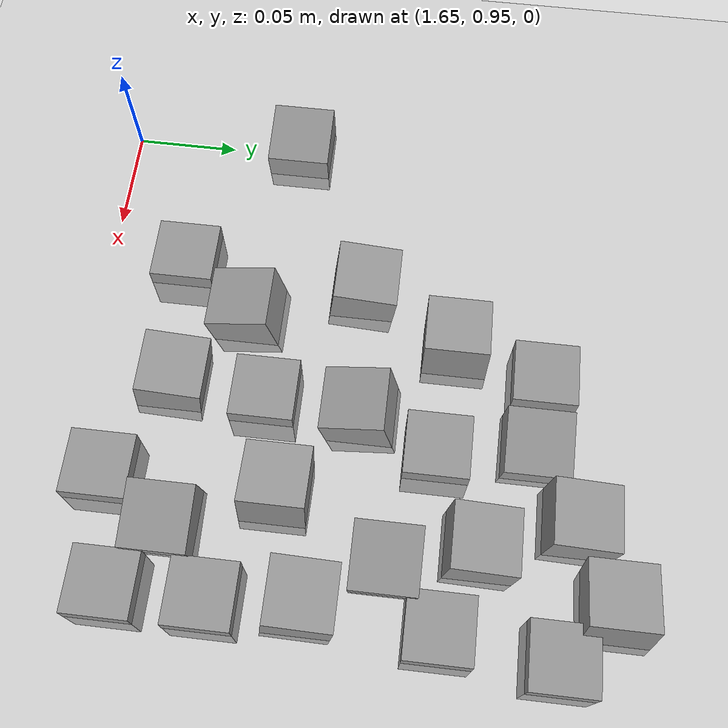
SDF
<sdf version="1.7">
 <world name="default">
  <model name="ground_plane">
   <static>1</static>
   <link name="link">
    <collision name="collision">
     <geometry><plane><normal>0 0 1</normal><size>100 100</size></plane></geometry>
     <surface><friction><ode><mu>100</mu><mu2>50</mu2></ode></friction></surface>
    </collision>
    <visual name="visual">
     <cast_shadows>0</cast_shadows>
     <geometry><plane><normal>0 0 1</normal><size>100 100</size></plane></geometry>
     <material>
      <script><uri>file://media/materials/scripts/gazebo.material</uri><name>Gazebo/Grey</name></script>
     </material>
    </visual>
   </link>
  </model>
  <model name="stone_road_5">
   <link name="link_0">
    <inertial>
     <mass>1</mass>
     <inertia>
      <ixx>0.166667</ixx>
      <ixy>0</ixy>
      <ixz>0</ixz>
      <iyy>0.166667</iyy>
      <iyz>0</iyz>
      <izz>0.166667</izz>
     </inertia>
    </inertial>
    <pose>-0.171827 0.03973 0.003778 0.2 -0 0</pose>
    <kinematic>1</kinematic>
    <visual name="visual">
     <geometry><box><size>0.03 0.03 0.03</size></box></geometry>
     <material>
      <lighting>1</lighting>
      <script><uri>file://media/materials/scripts/gazebo.material</uri><name>Gazebo/Grey</name></script>
      <shader type="pixel"><normal_map>__default__</normal_map></shader>
      <ambient>0.3 0.3 0.3 1</ambient>
      <diffuse>0.7 0.7 0.7 1</diffuse>
      <specular>0.01 0.01 0.01 1</specular>
      <emissive>0 0 0 1</emissive>
     </material>
    </visual>
    <collision name="collision">
     <geometry><box><size>0.03 0.03 0.03</size></box></geometry>
     <surface>
      <friction>
       <ode><mu>1</mu><mu2>1</mu2><fdir1>0 0 0</fdir1><slip1>0</slip1><slip2>0</slip2></ode>
       <torsional>
        <coefficient>1</coefficient>
        <patch_radius>0</patch_radius>
        <surface_radius>0</surface_radius>
        <use_patch_radius>1</use_patch_radius>
        <ode><slip>0</slip></ode>
       </torsional>
      </friction>
      <bounce><restitution_coefficient>0</restitution_coefficient><threshold>1e+06</threshold></bounce>
      <contact>
       <collide_without_contact>0</collide_without_contact>
       <collide_without_contact_bitmask>1</collide_without_contact_bitmask>
       <collide_bitmask>1</collide_bitmask>
       <ode>
        <soft_cfm>0</soft_cfm>
        <soft_erp>0.2</soft_erp>
        <kp>1e+13</kp>
        <kd>1</kd>
        <max_vel>0.01</max_vel>
        <min_depth>0</min_depth>
       </ode>
       <bullet>
        <split_impulse>1</split_impulse>
        <split_impulse_penetration_threshold>-0.01</split_impulse_penetration_threshold>
        <soft_cfm>0</soft_cfm>
        <soft_erp>0.2</soft_erp>
        <kp>1e+13</kp>
        <kd>1</kd>
       </bullet>
      </contact>
     </surface>
    </collision>
   </link>
   <link name="link_0_clone_2">
    <inertial>
     <mass>1</mass>
     <inertia>
      <ixx>0.166667</ixx>
      <ixy>0</ixy>
      <ixz>0</ixz>
      <iyy>0.166667</iyy>
      <iyz>0</iyz>
      <izz>0.166667</izz>
     </inertia>
    </inertial>
    <pose>-0.065685 0.018139 0.003778 0 0.15 0</pose>
    <kinematic>1</kinematic>
    <visual name="visual">
     <geometry><box><size>0.03 0.03 0.03</size></box></geometry>
     <material>
      <lighting>1</lighting>
      <script><uri>file://media/materials/scripts/gazebo.material</uri><name>Gazebo/Grey</name></script>
      <shader type="pixel"><normal_map>__default__</normal_map></shader>
      <ambient>0.3 0.3 0.3 1</ambient>
      <diffuse>0.7 0.7 0.7 1</diffuse>
      <specular>0.01 0.01 0.01 1</specular>
      <emissive>0 0 0 1</emissive>
     </material>
    </visual>
    <collision name="collision">
     <geometry><box><size>0.03 0.03 0.03</size></box></geometry>
     <surface>
      <friction>
       <ode><mu>1</mu><mu2>1</mu2><fdir1>0 0 0</fdir1><slip1>0</slip1><slip2>0</slip2></ode>
       <torsional>
        <coefficient>1</coefficient>
        <patch_radius>0</patch_radius>
        <surface_radius>0</surface_radius>
        <use_patch_radius>1</use_patch_radius>
        <ode><slip>0</slip></ode>
       </torsional>
      </friction>
      <bounce><restitution_coefficient>0</restitution_coefficient><threshold>1e+06</threshold></bounce>
      <contact>
       <collide_without_contact>0</collide_without_contact>
       <collide_without_contact_bitmask>1</collide_without_contact_bitmask>
       <collide_bitmask>1</collide_bitmask>
       <ode>
        <soft_cfm>0</soft_cfm>
        <soft_erp>0.2</soft_erp>
        <kp>1e+13</kp>
        <kd>1</kd>
        <max_vel>0.01</max_vel>
        <min_depth>0</min_depth>
       </ode>
       <bullet>
        <split_impulse>1</split_impulse>
        <split_impulse_penetration_threshold>-0.01</split_impulse_penetration_threshold>
        <soft_cfm>0</soft_cfm>
        <soft_erp>0.2</soft_erp>
        <kp>1e+13</kp>
        <kd>1</kd>
       </bullet>
      </contact>
     </surface>
    </collision>
   </link>
   <link name="link_0_clone_2_clone_2_clone_1">
    <inertial>
     <mass>1</mass>
     <inertia>
      <ixx>0.166667</ixx>
      <ixy>0</ixy>
      <ixz>0</ixz>
      <iyy>0.166667</iyy>
      <iyz>0</iyz>
      <izz>0.166667</izz>
     </inertia>
    </inertial>
    <pose>-0.085624 0.065625 0.003778 0 -0.15 0</pose>
    <kinematic>1</kinematic>
    <visual name="visual">
     <geometry><box><size>0.03 0.03 0.03</size></box></geometry>
     <material>
      <lighting>1</lighting>
      <script><uri>file://media/materials/scripts/gazebo.material</uri><name>Gazebo/Grey</name></script>
      <shader type="pixel"><normal_map>__default__</normal_map></shader>
      <ambient>0.3 0.3 0.3 1</ambient>
      <diffuse>0.7 0.7 0.7 1</diffuse>
      <specular>0.01 0.01 0.01 1</specular>
      <emissive>0 0 0 1</emissive>
     </material>
    </visual>
    <collision name="collision">
     <geometry><box><size>0.03 0.03 0.03</size></box></geometry>
     <surface>
      <friction>
       <ode><mu>1</mu><mu2>1</mu2><fdir1>0 0 0</fdir1><slip1>0</slip1><slip2>0</slip2></ode>
       <torsional>
        <coefficient>1</coefficient>
        <patch_radius>0</patch_radius>
        <surface_radius>0</surface_radius>
        <use_patch_radius>1</use_patch_radius>
        <ode><slip>0</slip></ode>
       </torsional>
      </friction>
      <bounce><restitution_coefficient>0</restitution_coefficient><threshold>1e+06</threshold></bounce>
      <contact>
       <collide_without_contact>0</collide_without_contact>
       <collide_without_contact_bitmask>1</collide_without_contact_bitmask>
       <collide_bitmask>1</collide_bitmask>
       <ode>
        <soft_cfm>0</soft_cfm>
        <soft_erp>0.2</soft_erp>
        <kp>1e+13</kp>
        <kd>1</kd>
        <max_vel>0.01</max_vel>
        <min_depth>0</min_depth>
       </ode>
       <bullet>
        <split_impulse>1</split_impulse>
        <split_impulse_penetration_threshold>-0.01</split_impulse_penetration_threshold>
        <soft_cfm>0</soft_cfm>
        <soft_erp>0.2</soft_erp>
        <kp>1e+13</kp>
        <kd>1</kd>
       </bullet>
      </contact>
     </surface>
    </collision>
   </link>
   <link name="link_0_clone_2_clone_2_clone_11">
    <inertial>
     <mass>1</mass>
     <inertia>
      <ixx>0.166667</ixx>
      <ixy>0</ixy>
      <ixz>0</ixz>
      <iyy>0.166667</iyy>
      <iyz>0</iyz>
      <izz>0.166667</izz>
     </inertia>
    </inertial>
    <pose>-0.050382 0.216558 0.003778 0 -0.15 0</pose>
    <kinematic>1</kinematic>
    <visual name="visual">
     <geometry><box><size>0.03 0.03 0.03</size></box></geometry>
     <material>
      <lighting>1</lighting>
      <script><uri>file://media/materials/scripts/gazebo.material</uri><name>Gazebo/Grey</name></script>
      <shader type="pixel"><normal_map>__default__</normal_map></shader>
      <ambient>0.3 0.3 0.3 1</ambient>
      <diffuse>0.7 0.7 0.7 1</diffuse>
      <specular>0.01 0.01 0.01 1</specular>
      <emissive>0 0 0 1</emissive>
     </material>
    </visual>
    <collision name="collision">
     <geometry><box><size>0.03 0.03 0.03</size></box></geometry>
     <surface>
      <friction>
       <ode><mu>1</mu><mu2>1</mu2><fdir1>0 0 0</fdir1><slip1>0</slip1><slip2>0</slip2></ode>
       <torsional>
        <coefficient>1</coefficient>
        <patch_radius>0</patch_radius>
        <surface_radius>0</surface_radius>
        <use_patch_radius>1</use_patch_radius>
        <ode><slip>0</slip></ode>
       </torsional>
      </friction>
      <bounce><restitution_coefficient>0</restitution_coefficient><threshold>1e+06</threshold></bounce>
      <contact>
       <collide_without_contact>0</collide_without_contact>
       <collide_without_contact_bitmask>1</collide_without_contact_bitmask>
       <collide_bitmask>1</collide_bitmask>
       <ode>
        <soft_cfm>0</soft_cfm>
        <soft_erp>0.2</soft_erp>
        <kp>1e+13</kp>
        <kd>1</kd>
        <max_vel>0.01</max_vel>
        <min_depth>0</min_depth>
       </ode>
       <bullet>
        <split_impulse>1</split_impulse>
        <split_impulse_penetration_threshold>-0.01</split_impulse_penetration_threshold>
        <soft_cfm>0</soft_cfm>
        <soft_erp>0.2</soft_erp>
        <kp>1e+13</kp>
        <kd>1</kd>
       </bullet>
      </contact>
     </surface>
    </collision>
   </link>
   <link name="link_0_clone_2_clone_2_clone_13_clone_clone_13">
    <inertial>
     <mass>1</mass>
     <inertia>
      <ixx>0.166667</ixx>
      <ixy>0</ixy>
      <ixz>0</ixz>
      <iyy>0.166667</iyy>
      <iyz>0</iyz>
      <izz>0.166667</izz>
     </inertia>
    </inertial>
    <pose>-0.069861 0.157394 0.003778 -0.1 0 0</pose>
    <kinematic>1</kinematic>
    <visual name="visual">
     <geometry><box><size>0.03 0.03 0.03</size></box></geometry>
     <material>
      <lighting>1</lighting>
      <script><uri>file://media/materials/scripts/gazebo.material</uri><name>Gazebo/Grey</name></script>
      <shader type="pixel"><normal_map>__default__</normal_map></shader>
      <ambient>0.3 0.3 0.3 1</ambient>
      <diffuse>0.7 0.7 0.7 1</diffuse>
      <specular>0.01 0.01 0.01 1</specular>
      <emissive>0 0 0 1</emissive>
     </material>
    </visual>
    <collision name="collision">
     <geometry><box><size>0.03 0.03 0.03</size></box></geometry>
     <surface>
      <friction>
       <ode><mu>1</mu><mu2>1</mu2><fdir1>0 0 0</fdir1><slip1>0</slip1><slip2>0</slip2></ode>
       <torsional>
        <coefficient>1</coefficient>
        <patch_radius>0</patch_radius>
        <surface_radius>0</surface_radius>
        <use_patch_radius>1</use_patch_radius>
        <ode><slip>0</slip></ode>
       </torsional>
      </friction>
      <bounce><restitution_coefficient>0</restitution_coefficient><threshold>1e+06</threshold></bounce>
      <contact>
       <collide_without_contact>0</collide_without_contact>
       <collide_without_contact_bitmask>1</collide_without_contact_bitmask>
       <collide_bitmask>1</collide_bitmask>
       <ode>
        <soft_cfm>0</soft_cfm>
        <soft_erp>0.2</soft_erp>
        <kp>1e+13</kp>
        <kd>1</kd>
        <max_vel>0.01</max_vel>
        <min_depth>0</min_depth>
       </ode>
       <bullet>
        <split_impulse>1</split_impulse>
        <split_impulse_penetration_threshold>-0.01</split_impulse_penetration_threshold>
        <soft_cfm>0</soft_cfm>
        <soft_erp>0.2</soft_erp>
        <kp>1e+13</kp>
        <kd>1</kd>
       </bullet>
      </contact>
     </surface>
    </collision>
   </link>
   <link name="link_0_clone_2_clone_2_clone_13_clone_clone_14">
    <inertial>
     <mass>1</mass>
     <inertia>
      <ixx>0.166667</ixx>
      <ixy>0</ixy>
      <ixz>0</ixz>
      <iyy>0.166667</iyy>
      <iyz>0</iyz>
      <izz>0.166667</izz>
     </inertia>
    </inertial>
    <pose>-0.190578 0.093923 0.003778 -0.1 0 0</pose>
    <kinematic>1</kinematic>
    <visual name="visual">
     <geometry><box><size>0.03 0.03 0.03</size></box></geometry>
     <material>
      <lighting>1</lighting>
      <script><uri>file://media/materials/scripts/gazebo.material</uri><name>Gazebo/Grey</name></script>
      <shader type="pixel"><normal_map>__default__</normal_map></shader>
      <ambient>0.3 0.3 0.3 1</ambient>
      <diffuse>0.7 0.7 0.7 1</diffuse>
      <specular>0.01 0.01 0.01 1</specular>
      <emissive>0 0 0 1</emissive>
     </material>
    </visual>
    <collision name="collision">
     <geometry><box><size>0.03 0.03 0.03</size></box></geometry>
     <surface>
      <friction>
       <ode><mu>1</mu><mu2>1</mu2><fdir1>0 0 0</fdir1><slip1>0</slip1><slip2>0</slip2></ode>
       <torsional>
        <coefficient>1</coefficient>
        <patch_radius>0</patch_radius>
        <surface_radius>0</surface_radius>
        <use_patch_radius>1</use_patch_radius>
        <ode><slip>0</slip></ode>
       </torsional>
      </friction>
      <bounce><restitution_coefficient>0</restitution_coefficient><threshold>1e+06</threshold></bounce>
      <contact>
       <collide_without_contact>0</collide_without_contact>
       <collide_without_contact_bitmask>1</collide_without_contact_bitmask>
       <collide_bitmask>1</collide_bitmask>
       <ode>
        <soft_cfm>0</soft_cfm>
        <soft_erp>0.2</soft_erp>
        <kp>1e+13</kp>
        <kd>1</kd>
        <max_vel>0.01</max_vel>
        <min_depth>0</min_depth>
       </ode>
       <bullet>
        <split_impulse>1</split_impulse>
        <split_impulse_penetration_threshold>-0.01</split_impulse_penetration_threshold>
        <soft_cfm>0</soft_cfm>
        <soft_erp>0.2</soft_erp>
        <kp>1e+13</kp>
        <kd>1</kd>
       </bullet>
      </contact>
     </surface>
    </collision>
   </link>
   <link name="link_0_clone_2_clone_2_clone_13_clone_clone_15">
    <inertial>
     <mass>1</mass>
     <inertia>
      <ixx>0.166667</ixx>
      <ixy>0</ixy>
      <ixz>0</ixz>
      <iyy>0.166667</iyy>
      <iyz>0</iyz>
      <izz>0.166667</izz>
     </inertia>
    </inertial>
    <pose>-0.084893 0.19984 0.003778 -0.1 0 0</pose>
    <kinematic>1</kinematic>
    <visual name="visual">
     <geometry><box><size>0.03 0.03 0.03</size></box></geometry>
     <material>
      <lighting>1</lighting>
      <script><uri>file://media/materials/scripts/gazebo.material</uri><name>Gazebo/Grey</name></script>
      <shader type="pixel"><normal_map>__default__</normal_map></shader>
      <ambient>0.3 0.3 0.3 1</ambient>
      <diffuse>0.7 0.7 0.7 1</diffuse>
      <specular>0.01 0.01 0.01 1</specular>
      <emissive>0 0 0 1</emissive>
     </material>
    </visual>
    <collision name="collision">
     <geometry><box><size>0.03 0.03 0.03</size></box></geometry>
     <surface>
      <friction>
       <ode><mu>1</mu><mu2>1</mu2><fdir1>0 0 0</fdir1><slip1>0</slip1><slip2>0</slip2></ode>
       <torsional>
        <coefficient>1</coefficient>
        <patch_radius>0</patch_radius>
        <surface_radius>0</surface_radius>
        <use_patch_radius>1</use_patch_radius>
        <ode><slip>0</slip></ode>
       </torsional>
      </friction>
      <bounce><restitution_coefficient>0</restitution_coefficient><threshold>1e+06</threshold></bounce>
      <contact>
       <collide_without_contact>0</collide_without_contact>
       <collide_without_contact_bitmask>1</collide_without_contact_bitmask>
       <collide_bitmask>1</collide_bitmask>
       <ode>
        <soft_cfm>0</soft_cfm>
        <soft_erp>0.2</soft_erp>
        <kp>1e+13</kp>
        <kd>1</kd>
        <max_vel>0.01</max_vel>
        <min_depth>0</min_depth>
       </ode>
       <bullet>
        <split_impulse>1</split_impulse>
        <split_impulse_penetration_threshold>-0.01</split_impulse_penetration_threshold>
        <soft_cfm>0</soft_cfm>
        <soft_erp>0.2</soft_erp>
        <kp>1e+13</kp>
        <kd>1</kd>
       </bullet>
      </contact>
     </surface>
    </collision>
   </link>
   <link name="link_0_clone_2_clone_2_clone_13_clone_clone_16_clone_2">
    <inertial>
     <mass>1</mass>
     <inertia>
      <ixx>0.166667</ixx>
      <ixy>0</ixy>
      <ixz>0</ixz>
      <iyy>0.166667</iyy>
      <iyz>0</iyz>
      <izz>0.166667</izz>
     </inertia>
    </inertial>
    <pose>-0.035128 0.040728 -0.006222 0 -0 0</pose>
    <kinematic>1</kinematic>
    <visual name="visual">
     <geometry><box><size>0.03 0.03 0.03</size></box></geometry>
     <material>
      <lighting>1</lighting>
      <script><uri>file://media/materials/scripts/gazebo.material</uri><name>Gazebo/Grey</name></script>
      <shader type="pixel"><normal_map>__default__</normal_map></shader>
      <ambient>0.3 0.3 0.3 1</ambient>
      <diffuse>0.7 0.7 0.7 1</diffuse>
      <specular>0.01 0.01 0.01 1</specular>
      <emissive>0 0 0 1</emissive>
     </material>
    </visual>
    <collision name="collision">
     <geometry><box><size>0.03 0.03 0.03</size></box></geometry>
     <surface>
      <friction>
       <ode><mu>1</mu><mu2>1</mu2><fdir1>0 0 0</fdir1><slip1>0</slip1><slip2>0</slip2></ode>
       <torsional>
        <coefficient>1</coefficient>
        <patch_radius>0</patch_radius>
        <surface_radius>0</surface_radius>
        <use_patch_radius>1</use_patch_radius>
        <ode><slip>0</slip></ode>
       </torsional>
      </friction>
      <bounce><restitution_coefficient>0</restitution_coefficient><threshold>1e+06</threshold></bounce>
      <contact>
       <collide_without_contact>0</collide_without_contact>
       <collide_without_contact_bitmask>1</collide_without_contact_bitmask>
       <collide_bitmask>1</collide_bitmask>
       <ode>
        <soft_cfm>0</soft_cfm>
        <soft_erp>0.2</soft_erp>
        <kp>1e+13</kp>
        <kd>1</kd>
        <max_vel>0.01</max_vel>
        <min_depth>0</min_depth>
       </ode>
       <bullet>
        <split_impulse>1</split_impulse>
        <split_impulse_penetration_threshold>-0.01</split_impulse_penetration_threshold>
        <soft_cfm>0</soft_cfm>
        <soft_erp>0.2</soft_erp>
        <kp>1e+13</kp>
        <kd>1</kd>
       </bullet>
      </contact>
     </surface>
    </collision>
   </link>
   <link name="link_0_clone_2_clone_2_clone_13_clone_clone_16_clone_21">
    <inertial>
     <mass>1</mass>
     <inertia>
      <ixx>0.166667</ixx>
      <ixy>0</ixy>
      <ixz>0</ixz>
      <iyy>0.166667</iyy>
      <iyz>0</iyz>
      <izz>0.166667</izz>
     </inertia>
    </inertial>
    <pose>-0.032398 0.142589 -0.006222 0 -0 0</pose>
    <kinematic>1</kinematic>
    <visual name="visual">
     <geometry><box><size>0.03 0.03 0.03</size></box></geometry>
     <material>
      <lighting>1</lighting>
      <script><uri>file://media/materials/scripts/gazebo.material</uri><name>Gazebo/Grey</name></script>
      <shader type="pixel"><normal_map>__default__</normal_map></shader>
      <ambient>0.3 0.3 0.3 1</ambient>
      <diffuse>0.7 0.7 0.7 1</diffuse>
      <specular>0.01 0.01 0.01 1</specular>
      <emissive>0 0 0 1</emissive>
     </material>
    </visual>
    <collision name="collision">
     <geometry><box><size>0.03 0.03 0.03</size></box></geometry>
     <surface>
      <friction>
       <ode><mu>1</mu><mu2>1</mu2><fdir1>0 0 0</fdir1><slip1>0</slip1><slip2>0</slip2></ode>
       <torsional>
        <coefficient>1</coefficient>
        <patch_radius>0</patch_radius>
        <surface_radius>0</surface_radius>
        <use_patch_radius>1</use_patch_radius>
        <ode><slip>0</slip></ode>
       </torsional>
      </friction>
      <bounce><restitution_coefficient>0</restitution_coefficient><threshold>1e+06</threshold></bounce>
      <contact>
       <collide_without_contact>0</collide_without_contact>
       <collide_without_contact_bitmask>1</collide_without_contact_bitmask>
       <collide_bitmask>1</collide_bitmask>
       <ode>
        <soft_cfm>0</soft_cfm>
        <soft_erp>0.2</soft_erp>
        <kp>1e+13</kp>
        <kd>1</kd>
        <max_vel>0.01</max_vel>
        <min_depth>0</min_depth>
       </ode>
       <bullet>
        <split_impulse>1</split_impulse>
        <split_impulse_penetration_threshold>-0.01</split_impulse_penetration_threshold>
        <soft_cfm>0</soft_cfm>
        <soft_erp>0.2</soft_erp>
        <kp>1e+13</kp>
        <kd>1</kd>
       </bullet>
      </contact>
     </surface>
    </collision>
   </link>
   <link name="link_0_clone_2_clone_2_clone_13_clone_clone_16_clone_22">
    <inertial>
     <mass>1</mass>
     <inertia>
      <ixx>0.166667</ixx>
      <ixy>0</ixy>
      <ixz>0</ixz>
      <iyy>0.166667</iyy>
      <iyz>0</iyz>
      <izz>0.166667</izz>
     </inertia>
    </inertial>
    <pose>-0.025872 0.194724 -0.006222 0 -0 0</pose>
    <kinematic>1</kinematic>
    <visual name="visual">
     <geometry><box><size>0.03 0.03 0.03</size></box></geometry>
     <material>
      <lighting>1</lighting>
      <script><uri>file://media/materials/scripts/gazebo.material</uri><name>Gazebo/Grey</name></script>
      <shader type="pixel"><normal_map>__default__</normal_map></shader>
      <ambient>0.3 0.3 0.3 1</ambient>
      <diffuse>0.7 0.7 0.7 1</diffuse>
      <specular>0.01 0.01 0.01 1</specular>
      <emissive>0 0 0 1</emissive>
     </material>
    </visual>
    <collision name="collision">
     <geometry><box><size>0.03 0.03 0.03</size></box></geometry>
     <surface>
      <friction>
       <ode><mu>1</mu><mu2>1</mu2><fdir1>0 0 0</fdir1><slip1>0</slip1><slip2>0</slip2></ode>
       <torsional>
        <coefficient>1</coefficient>
        <patch_radius>0</patch_radius>
        <surface_radius>0</surface_radius>
        <use_patch_radius>1</use_patch_radius>
        <ode><slip>0</slip></ode>
       </torsional>
      </friction>
      <bounce><restitution_coefficient>0</restitution_coefficient><threshold>1e+06</threshold></bounce>
      <contact>
       <collide_without_contact>0</collide_without_contact>
       <collide_without_contact_bitmask>1</collide_without_contact_bitmask>
       <collide_bitmask>1</collide_bitmask>
       <ode>
        <soft_cfm>0</soft_cfm>
        <soft_erp>0.2</soft_erp>
        <kp>1e+13</kp>
        <kd>1</kd>
        <max_vel>0.01</max_vel>
        <min_depth>0</min_depth>
       </ode>
       <bullet>
        <split_impulse>1</split_impulse>
        <split_impulse_penetration_threshold>-0.01</split_impulse_penetration_threshold>
        <soft_cfm>0</soft_cfm>
        <soft_erp>0.2</soft_erp>
        <kp>1e+13</kp>
        <kd>1</kd>
       </bullet>
      </contact>
     </surface>
    </collision>
   </link>
   <link name="link_0_clone_2_clone_2_clone_13_clone_clone_16_clone_25">
    <inertial>
     <mass>1</mass>
     <inertia>
      <ixx>0.166667</ixx>
      <ixy>0</ixy>
      <ixz>0</ixz>
      <iyy>0.166667</iyy>
      <iyz>0</iyz>
      <izz>0.166667</izz>
     </inertia>
    </inertial>
    <pose>-0.15326 0.182661 -0.006222 0 -0 0</pose>
    <kinematic>1</kinematic>
    <visual name="visual">
     <geometry><box><size>0.03 0.03 0.03</size></box></geometry>
     <material>
      <lighting>1</lighting>
      <script><uri>file://media/materials/scripts/gazebo.material</uri><name>Gazebo/Grey</name></script>
      <shader type="pixel"><normal_map>__default__</normal_map></shader>
      <ambient>0.3 0.3 0.3 1</ambient>
      <diffuse>0.7 0.7 0.7 1</diffuse>
      <specular>0.01 0.01 0.01 1</specular>
      <emissive>0 0 0 1</emissive>
     </material>
    </visual>
    <collision name="collision">
     <geometry><box><size>0.03 0.03 0.03</size></box></geometry>
     <surface>
      <friction>
       <ode><mu>1</mu><mu2>1</mu2><fdir1>0 0 0</fdir1><slip1>0</slip1><slip2>0</slip2></ode>
       <torsional>
        <coefficient>1</coefficient>
        <patch_radius>0</patch_radius>
        <surface_radius>0</surface_radius>
        <use_patch_radius>1</use_patch_radius>
        <ode><slip>0</slip></ode>
       </torsional>
      </friction>
      <bounce><restitution_coefficient>0</restitution_coefficient><threshold>1e+06</threshold></bounce>
      <contact>
       <collide_without_contact>0</collide_without_contact>
       <collide_without_contact_bitmask>1</collide_without_contact_bitmask>
       <collide_bitmask>1</collide_bitmask>
       <ode>
        <soft_cfm>0</soft_cfm>
        <soft_erp>0.2</soft_erp>
        <kp>1e+13</kp>
        <kd>1</kd>
        <max_vel>0.01</max_vel>
        <min_depth>0</min_depth>
       </ode>
       <bullet>
        <split_impulse>1</split_impulse>
        <split_impulse_penetration_threshold>-0.01</split_impulse_penetration_threshold>
        <soft_cfm>0</soft_cfm>
        <soft_erp>0.2</soft_erp>
        <kp>1e+13</kp>
        <kd>1</kd>
       </bullet>
      </contact>
     </surface>
    </collision>
   </link>
   <link name="link_0_clone_2_clone_2_clone_13_clone_clone_16_clone_26">
    <inertial>
     <mass>1</mass>
     <inertia>
      <ixx>0.166667</ixx>
      <ixy>0</ixy>
      <ixz>0</ixz>
      <iyy>0.166667</iyy>
      <iyz>0</iyz>
      <izz>0.166667</izz>
     </inertia>
    </inertial>
    <pose>-0.035162 -0.002247 -0.006222 0 -0 0</pose>
    <kinematic>1</kinematic>
    <visual name="visual">
     <geometry><box><size>0.03 0.03 0.03</size></box></geometry>
     <material>
      <lighting>1</lighting>
      <script><uri>file://media/materials/scripts/gazebo.material</uri><name>Gazebo/Grey</name></script>
      <shader type="pixel"><normal_map>__default__</normal_map></shader>
      <ambient>0.3 0.3 0.3 1</ambient>
      <diffuse>0.7 0.7 0.7 1</diffuse>
      <specular>0.01 0.01 0.01 1</specular>
      <emissive>0 0 0 1</emissive>
     </material>
    </visual>
    <collision name="collision">
     <geometry><box><size>0.03 0.03 0.03</size></box></geometry>
     <surface>
      <friction>
       <ode><mu>1</mu><mu2>1</mu2><fdir1>0 0 0</fdir1><slip1>0</slip1><slip2>0</slip2></ode>
       <torsional>
        <coefficient>1</coefficient>
        <patch_radius>0</patch_radius>
        <surface_radius>0</surface_radius>
        <use_patch_radius>1</use_patch_radius>
        <ode><slip>0</slip></ode>
       </torsional>
      </friction>
      <bounce><restitution_coefficient>0</restitution_coefficient><threshold>1e+06</threshold></bounce>
      <contact>
       <collide_without_contact>0</collide_without_contact>
       <collide_without_contact_bitmask>1</collide_without_contact_bitmask>
       <collide_bitmask>1</collide_bitmask>
       <ode>
        <soft_cfm>0</soft_cfm>
        <soft_erp>0.2</soft_erp>
        <kp>1e+13</kp>
        <kd>1</kd>
        <max_vel>0.01</max_vel>
        <min_depth>0</min_depth>
       </ode>
       <bullet>
        <split_impulse>1</split_impulse>
        <split_impulse_penetration_threshold>-0.01</split_impulse_penetration_threshold>
        <soft_cfm>0</soft_cfm>
        <soft_erp>0.2</soft_erp>
        <kp>1e+13</kp>
        <kd>1</kd>
       </bullet>
      </contact>
     </surface>
    </collision>
   </link>
   <link name="link_0_clone_2_clone_2_clone_13_clone_clone_16_clone_3">
    <inertial>
     <mass>1</mass>
     <inertia>
      <ixx>0.166667</ixx>
      <ixy>0</ixy>
      <ixz>0</ixz>
      <iyy>0.166667</iyy>
      <iyz>0</iyz>
      <izz>0.166667</izz>
     </inertia>
    </inertial>
    <pose>-0.112739 0.135576 -0.006222 0 -0 0</pose>
    <kinematic>1</kinematic>
    <visual name="visual">
     <geometry><box><size>0.03 0.03 0.03</size></box></geometry>
     <material>
      <lighting>1</lighting>
      <script><uri>file://media/materials/scripts/gazebo.material</uri><name>Gazebo/Grey</name></script>
      <shader type="pixel"><normal_map>__default__</normal_map></shader>
      <ambient>0.3 0.3 0.3 1</ambient>
      <diffuse>0.7 0.7 0.7 1</diffuse>
      <specular>0.01 0.01 0.01 1</specular>
      <emissive>0 0 0 1</emissive>
     </material>
    </visual>
    <collision name="collision">
     <geometry><box><size>0.03 0.03 0.03</size></box></geometry>
     <surface>
      <friction>
       <ode><mu>1</mu><mu2>1</mu2><fdir1>0 0 0</fdir1><slip1>0</slip1><slip2>0</slip2></ode>
       <torsional>
        <coefficient>1</coefficient>
        <patch_radius>0</patch_radius>
        <surface_radius>0</surface_radius>
        <use_patch_radius>1</use_patch_radius>
        <ode><slip>0</slip></ode>
       </torsional>
      </friction>
      <bounce><restitution_coefficient>0</restitution_coefficient><threshold>1e+06</threshold></bounce>
      <contact>
       <collide_without_contact>0</collide_without_contact>
       <collide_without_contact_bitmask>1</collide_without_contact_bitmask>
       <collide_bitmask>1</collide_bitmask>
       <ode>
        <soft_cfm>0</soft_cfm>
        <soft_erp>0.2</soft_erp>
        <kp>1e+13</kp>
        <kd>1</kd>
        <max_vel>0.01</max_vel>
        <min_depth>0</min_depth>
       </ode>
       <bullet>
        <split_impulse>1</split_impulse>
        <split_impulse_penetration_threshold>-0.01</split_impulse_penetration_threshold>
        <soft_cfm>0</soft_cfm>
        <soft_erp>0.2</soft_erp>
        <kp>1e+13</kp>
        <kd>1</kd>
       </bullet>
      </contact>
     </surface>
    </collision>
   </link>
   <link name="link_0_clone_2_clone_2_clone_13_clone_clone_16_clone_31">
    <inertial>
     <mass>1</mass>
     <inertia>
      <ixx>0.166667</ixx>
      <ixy>0</ixy>
      <ixz>0</ixz>
      <iyy>0.166667</iyy>
      <iyz>0</iyz>
      <izz>0.166667</izz>
     </inertia>
    </inertial>
    <pose>-0.198811 0.004584 -0.006222 0 -0 0</pose>
    <kinematic>1</kinematic>
    <visual name="visual">
     <geometry><box><size>0.03 0.03 0.03</size></box></geometry>
     <material>
      <lighting>1</lighting>
      <script><uri>file://media/materials/scripts/gazebo.material</uri><name>Gazebo/Grey</name></script>
      <shader type="pixel"><normal_map>__default__</normal_map></shader>
      <ambient>0.3 0.3 0.3 1</ambient>
      <diffuse>0.7 0.7 0.7 1</diffuse>
      <specular>0.01 0.01 0.01 1</specular>
      <emissive>0 0 0 1</emissive>
     </material>
    </visual>
    <collision name="collision">
     <geometry><box><size>0.03 0.03 0.03</size></box></geometry>
     <surface>
      <friction>
       <ode><mu>1</mu><mu2>1</mu2><fdir1>0 0 0</fdir1><slip1>0</slip1><slip2>0</slip2></ode>
       <torsional>
        <coefficient>1</coefficient>
        <patch_radius>0</patch_radius>
        <surface_radius>0</surface_radius>
        <use_patch_radius>1</use_patch_radius>
        <ode><slip>0</slip></ode>
       </torsional>
      </friction>
      <bounce><restitution_coefficient>0</restitution_coefficient><threshold>1e+06</threshold></bounce>
      <contact>
       <collide_without_contact>0</collide_without_contact>
       <collide_without_contact_bitmask>1</collide_without_contact_bitmask>
       <collide_bitmask>1</collide_bitmask>
       <ode>
        <soft_cfm>0</soft_cfm>
        <soft_erp>0.2</soft_erp>
        <kp>1e+13</kp>
        <kd>1</kd>
        <max_vel>0.01</max_vel>
        <min_depth>0</min_depth>
       </ode>
       <bullet>
        <split_impulse>1</split_impulse>
        <split_impulse_penetration_threshold>-0.01</split_impulse_penetration_threshold>
        <soft_cfm>0</soft_cfm>
        <soft_erp>0.2</soft_erp>
        <kp>1e+13</kp>
        <kd>1</kd>
       </bullet>
      </contact>
     </surface>
    </collision>
   </link>
   <link name="link_0_clone_2_clone_2_clone_13_clone_clone_16_clone_4">
    <inertial>
     <mass>1</mass>
     <inertia>
      <ixx>0.166667</ixx>
      <ixy>0</ixy>
      <ixz>0</ixz>
      <iyy>0.166667</iyy>
      <iyz>0</iyz>
      <izz>0.166667</izz>
     </inertia>
    </inertial>
    <pose>-0.131411 0.053677 -0.006222 0 -0 0</pose>
    <kinematic>1</kinematic>
    <visual name="visual">
     <geometry><box><size>0.03 0.03 0.03</size></box></geometry>
     <material>
      <lighting>1</lighting>
      <script><uri>file://media/materials/scripts/gazebo.material</uri><name>Gazebo/Grey</name></script>
      <shader type="pixel"><normal_map>__default__</normal_map></shader>
      <ambient>0.3 0.3 0.3 1</ambient>
      <diffuse>0.7 0.7 0.7 1</diffuse>
      <specular>0.01 0.01 0.01 1</specular>
      <emissive>0 0 0 1</emissive>
     </material>
    </visual>
    <collision name="collision">
     <geometry><box><size>0.03 0.03 0.03</size></box></geometry>
     <surface>
      <friction>
       <ode><mu>1</mu><mu2>1</mu2><fdir1>0 0 0</fdir1><slip1>0</slip1><slip2>0</slip2></ode>
       <torsional>
        <coefficient>1</coefficient>
        <patch_radius>0</patch_radius>
        <surface_radius>0</surface_radius>
        <use_patch_radius>1</use_patch_radius>
        <ode><slip>0</slip></ode>
       </torsional>
      </friction>
      <bounce><restitution_coefficient>0</restitution_coefficient><threshold>1e+06</threshold></bounce>
      <contact>
       <collide_without_contact>0</collide_without_contact>
       <collide_without_contact_bitmask>1</collide_without_contact_bitmask>
       <collide_bitmask>1</collide_bitmask>
       <ode>
        <soft_cfm>0</soft_cfm>
        <soft_erp>0.2</soft_erp>
        <kp>1e+13</kp>
        <kd>1</kd>
        <max_vel>0.01</max_vel>
        <min_depth>0</min_depth>
       </ode>
       <bullet>
        <split_impulse>1</split_impulse>
        <split_impulse_penetration_threshold>-0.01</split_impulse_penetration_threshold>
        <soft_cfm>0</soft_cfm>
        <soft_erp>0.2</soft_erp>
        <kp>1e+13</kp>
        <kd>1</kd>
       </bullet>
      </contact>
     </surface>
    </collision>
   </link>
   <link name="link_0_clone_2_clone_2_clone_13_clone_clone_16_clone_5">
    <inertial>
     <mass>1</mass>
     <inertia>
      <ixx>0.166667</ixx>
      <ixy>0</ixy>
      <ixz>0</ixz>
      <iyy>0.166667</iyy>
      <iyz>0</iyz>
      <izz>0.166667</izz>
     </inertia>
    </inertial>
    <pose>-0.086674 -0.014784 -0.006222 0 -0 0</pose>
    <kinematic>1</kinematic>
    <visual name="visual">
     <geometry><box><size>0.03 0.03 0.03</size></box></geometry>
     <material>
      <lighting>1</lighting>
      <script><uri>file://media/materials/scripts/gazebo.material</uri><name>Gazebo/Grey</name></script>
      <shader type="pixel"><normal_map>__default__</normal_map></shader>
      <ambient>0.3 0.3 0.3 1</ambient>
      <diffuse>0.7 0.7 0.7 1</diffuse>
      <specular>0.01 0.01 0.01 1</specular>
      <emissive>0 0 0 1</emissive>
     </material>
    </visual>
    <collision name="collision">
     <geometry><box><size>0.03 0.03 0.03</size></box></geometry>
     <surface>
      <friction>
       <ode><mu>1</mu><mu2>1</mu2><fdir1>0 0 0</fdir1><slip1>0</slip1><slip2>0</slip2></ode>
       <torsional>
        <coefficient>1</coefficient>
        <patch_radius>0</patch_radius>
        <surface_radius>0</surface_radius>
        <use_patch_radius>1</use_patch_radius>
        <ode><slip>0</slip></ode>
       </torsional>
      </friction>
      <bounce><restitution_coefficient>0</restitution_coefficient><threshold>1e+06</threshold></bounce>
      <contact>
       <collide_without_contact>0</collide_without_contact>
       <collide_without_contact_bitmask>1</collide_without_contact_bitmask>
       <collide_bitmask>1</collide_bitmask>
       <ode>
        <soft_cfm>0</soft_cfm>
        <soft_erp>0.2</soft_erp>
        <kp>1e+13</kp>
        <kd>1</kd>
        <max_vel>0.01</max_vel>
        <min_depth>0</min_depth>
       </ode>
       <bullet>
        <split_impulse>1</split_impulse>
        <split_impulse_penetration_threshold>-0.01</split_impulse_penetration_threshold>
        <soft_cfm>0</soft_cfm>
        <soft_erp>0.2</soft_erp>
        <kp>1e+13</kp>
        <kd>1</kd>
       </bullet>
      </contact>
     </surface>
    </collision>
   </link>
   <link name="link_0_clone_2_clone_2_clone_13_clone_clone_2">
    <inertial>
     <mass>1</mass>
     <inertia>
      <ixx>0.166667</ixx>
      <ixy>0</ixy>
      <ixz>0</ixz>
      <iyy>0.166667</iyy>
      <iyz>0</iyz>
      <izz>0.166667</izz>
     </inertia>
    </inertial>
    <pose>-0.037997 0.082571 0.003778 -0.1 0 0</pose>
    <kinematic>1</kinematic>
    <visual name="visual">
     <geometry><box><size>0.03 0.03 0.03</size></box></geometry>
     <material>
      <lighting>1</lighting>
      <script><uri>file://media/materials/scripts/gazebo.material</uri><name>Gazebo/Grey</name></script>
      <shader type="pixel"><normal_map>__default__</normal_map></shader>
      <ambient>0.3 0.3 0.3 1</ambient>
      <diffuse>0.7 0.7 0.7 1</diffuse>
      <specular>0.01 0.01 0.01 1</specular>
      <emissive>0 0 0 1</emissive>
     </material>
    </visual>
    <collision name="collision">
     <geometry><box><size>0.03 0.03 0.03</size></box></geometry>
     <surface>
      <friction>
       <ode><mu>1</mu><mu2>1</mu2><fdir1>0 0 0</fdir1><slip1>0</slip1><slip2>0</slip2></ode>
       <torsional>
        <coefficient>1</coefficient>
        <patch_radius>0</patch_radius>
        <surface_radius>0</surface_radius>
        <use_patch_radius>1</use_patch_radius>
        <ode><slip>0</slip></ode>
       </torsional>
      </friction>
      <bounce><restitution_coefficient>0</restitution_coefficient><threshold>1e+06</threshold></bounce>
      <contact>
       <collide_without_contact>0</collide_without_contact>
       <collide_without_contact_bitmask>1</collide_without_contact_bitmask>
       <collide_bitmask>1</collide_bitmask>
       <ode>
        <soft_cfm>0</soft_cfm>
        <soft_erp>0.2</soft_erp>
        <kp>1e+13</kp>
        <kd>1</kd>
        <max_vel>0.01</max_vel>
        <min_depth>0</min_depth>
       </ode>
       <bullet>
        <split_impulse>1</split_impulse>
        <split_impulse_penetration_threshold>-0.01</split_impulse_penetration_threshold>
        <soft_cfm>0</soft_cfm>
        <soft_erp>0.2</soft_erp>
        <kp>1e+13</kp>
        <kd>1</kd>
       </bullet>
      </contact>
     </surface>
    </collision>
   </link>
   <link name="link_0_clone_2_clone_2_clone_13_clone_clone_7">
    <inertial>
     <mass>1</mass>
     <inertia>
      <ixx>0.166667</ixx>
      <ixy>0</ixy>
      <ixz>0</ixz>
      <iyy>0.166667</iyy>
      <iyz>0</iyz>
      <izz>0.166667</izz>
     </inertia>
    </inertial>
    <pose>-0.133876 0.010561 0.003778 -0.1 0 0</pose>
    <kinematic>1</kinematic>
    <visual name="visual">
     <geometry><box><size>0.03 0.03 0.03</size></box></geometry>
     <material>
      <lighting>1</lighting>
      <script><uri>file://media/materials/scripts/gazebo.material</uri><name>Gazebo/Grey</name></script>
      <shader type="pixel"><normal_map>__default__</normal_map></shader>
      <ambient>0.3 0.3 0.3 1</ambient>
      <diffuse>0.7 0.7 0.7 1</diffuse>
      <specular>0.01 0.01 0.01 1</specular>
      <emissive>0 0 0 1</emissive>
     </material>
    </visual>
    <collision name="collision">
     <geometry><box><size>0.03 0.03 0.03</size></box></geometry>
     <surface>
      <friction>
       <ode><mu>1</mu><mu2>1</mu2><fdir1>0 0 0</fdir1><slip1>0</slip1><slip2>0</slip2></ode>
       <torsional>
        <coefficient>1</coefficient>
        <patch_radius>0</patch_radius>
        <surface_radius>0</surface_radius>
        <use_patch_radius>1</use_patch_radius>
        <ode><slip>0</slip></ode>
       </torsional>
      </friction>
      <bounce><restitution_coefficient>0</restitution_coefficient><threshold>1e+06</threshold></bounce>
      <contact>
       <collide_without_contact>0</collide_without_contact>
       <collide_without_contact_bitmask>1</collide_without_contact_bitmask>
       <collide_bitmask>1</collide_bitmask>
       <ode>
        <soft_cfm>0</soft_cfm>
        <soft_erp>0.2</soft_erp>
        <kp>1e+13</kp>
        <kd>1</kd>
        <max_vel>0.01</max_vel>
        <min_depth>0</min_depth>
       </ode>
       <bullet>
        <split_impulse>1</split_impulse>
        <split_impulse_penetration_threshold>-0.01</split_impulse_penetration_threshold>
        <soft_cfm>0</soft_cfm>
        <soft_erp>0.2</soft_erp>
        <kp>1e+13</kp>
        <kd>1</kd>
       </bullet>
      </contact>
     </surface>
    </collision>
   </link>
   <link name="link_0_clone_2_clone_2_clone_2">
    <inertial>
     <mass>1</mass>
     <inertia>
      <ixx>0.166667</ixx>
      <ixy>0</ixy>
      <ixz>0</ixz>
      <iyy>0.166667</iyy>
      <iyz>0</iyz>
      <izz>0.166667</izz>
     </inertia>
    </inertial>
    <pose>-0.166079 0.139989 0.003778 0 -0.15 0</pose>
    <kinematic>1</kinematic>
    <visual name="visual">
     <geometry><box><size>0.03 0.03 0.03</size></box></geometry>
     <material>
      <lighting>1</lighting>
      <script><uri>file://media/materials/scripts/gazebo.material</uri><name>Gazebo/Grey</name></script>
      <shader type="pixel"><normal_map>__default__</normal_map></shader>
      <ambient>0.3 0.3 0.3 1</ambient>
      <diffuse>0.7 0.7 0.7 1</diffuse>
      <specular>0.01 0.01 0.01 1</specular>
      <emissive>0 0 0 1</emissive>
     </material>
    </visual>
    <collision name="collision">
     <geometry><box><size>0.03 0.03 0.03</size></box></geometry>
     <surface>
      <friction>
       <ode><mu>1</mu><mu2>1</mu2><fdir1>0 0 0</fdir1><slip1>0</slip1><slip2>0</slip2></ode>
       <torsional>
        <coefficient>1</coefficient>
        <patch_radius>0</patch_radius>
        <surface_radius>0</surface_radius>
        <use_patch_radius>1</use_patch_radius>
        <ode><slip>0</slip></ode>
       </torsional>
      </friction>
      <bounce><restitution_coefficient>0</restitution_coefficient><threshold>1e+06</threshold></bounce>
      <contact>
       <collide_without_contact>0</collide_without_contact>
       <collide_without_contact_bitmask>1</collide_without_contact_bitmask>
       <collide_bitmask>1</collide_bitmask>
       <ode>
        <soft_cfm>0</soft_cfm>
        <soft_erp>0.2</soft_erp>
        <kp>1e+13</kp>
        <kd>1</kd>
        <max_vel>0.01</max_vel>
        <min_depth>0</min_depth>
       </ode>
       <bullet>
        <split_impulse>1</split_impulse>
        <split_impulse_penetration_threshold>-0.01</split_impulse_penetration_threshold>
        <soft_cfm>0</soft_cfm>
        <soft_erp>0.2</soft_erp>
        <kp>1e+13</kp>
        <kd>1</kd>
       </bullet>
      </contact>
     </surface>
    </collision>
   </link>
   <link name="link_0_clone_2_clone_3">
    <inertial>
     <mass>1</mass>
     <inertia>
      <ixx>0.166667</ixx>
      <ixy>0</ixy>
      <ixz>0</ixz>
      <iyy>0.166667</iyy>
      <iyz>0</iyz>
      <izz>0.166667</izz>
     </inertia>
    </inertial>
    <pose>-0.058921 0.117271 0.003778 0 0.15 0</pose>
    <kinematic>1</kinematic>
    <visual name="visual">
     <geometry><box><size>0.03 0.03 0.03</size></box></geometry>
     <material>
      <lighting>1</lighting>
      <script><uri>file://media/materials/scripts/gazebo.material</uri><name>Gazebo/Grey</name></script>
      <shader type="pixel"><normal_map>__default__</normal_map></shader>
      <ambient>0.3 0.3 0.3 1</ambient>
      <diffuse>0.7 0.7 0.7 1</diffuse>
      <specular>0.01 0.01 0.01 1</specular>
      <emissive>0 0 0 1</emissive>
     </material>
    </visual>
    <collision name="collision">
     <geometry><box><size>0.03 0.03 0.03</size></box></geometry>
     <surface>
      <friction>
       <ode><mu>1</mu><mu2>1</mu2><fdir1>0 0 0</fdir1><slip1>0</slip1><slip2>0</slip2></ode>
       <torsional>
        <coefficient>1</coefficient>
        <patch_radius>0</patch_radius>
        <surface_radius>0</surface_radius>
        <use_patch_radius>1</use_patch_radius>
        <ode><slip>0</slip></ode>
       </torsional>
      </friction>
      <bounce><restitution_coefficient>0</restitution_coefficient><threshold>1e+06</threshold></bounce>
      <contact>
       <collide_without_contact>0</collide_without_contact>
       <collide_without_contact_bitmask>1</collide_without_contact_bitmask>
       <collide_bitmask>1</collide_bitmask>
       <ode>
        <soft_cfm>0</soft_cfm>
        <soft_erp>0.2</soft_erp>
        <kp>1e+13</kp>
        <kd>1</kd>
        <max_vel>0.01</max_vel>
        <min_depth>0</min_depth>
       </ode>
       <bullet>
        <split_impulse>1</split_impulse>
        <split_impulse_penetration_threshold>-0.01</split_impulse_penetration_threshold>
        <soft_cfm>0</soft_cfm>
        <soft_erp>0.2</soft_erp>
        <kp>1e+13</kp>
        <kd>1</kd>
       </bullet>
      </contact>
     </surface>
    </collision>
   </link>
   <link name="link_0_clone_2_clone_4">
    <inertial>
     <mass>1</mass>
     <inertia>
      <ixx>0.166667</ixx>
      <ixy>0</ixy>
      <ixz>0</ixz>
      <iyy>0.166667</iyy>
      <iyz>0</iyz>
      <izz>0.166667</izz>
     </inertia>
    </inertial>
    <pose>-0.117313 0.179399 0.003778 0 0.15 0</pose>
    <kinematic>1</kinematic>
    <visual name="visual">
     <geometry><box><size>0.03 0.03 0.03</size></box></geometry>
     <material>
      <lighting>1</lighting>
      <script><uri>file://media/materials/scripts/gazebo.material</uri><name>Gazebo/Grey</name></script>
      <shader type="pixel"><normal_map>__default__</normal_map></shader>
      <ambient>0.3 0.3 0.3 1</ambient>
      <diffuse>0.7 0.7 0.7 1</diffuse>
      <specular>0.01 0.01 0.01 1</specular>
      <emissive>0 0 0 1</emissive>
     </material>
    </visual>
    <collision name="collision">
     <geometry><box><size>0.03 0.03 0.03</size></box></geometry>
     <surface>
      <friction>
       <ode><mu>1</mu><mu2>1</mu2><fdir1>0 0 0</fdir1><slip1>0</slip1><slip2>0</slip2></ode>
       <torsional>
        <coefficient>1</coefficient>
        <patch_radius>0</patch_radius>
        <surface_radius>0</surface_radius>
        <use_patch_radius>1</use_patch_radius>
        <ode><slip>0</slip></ode>
       </torsional>
      </friction>
      <bounce><restitution_coefficient>0</restitution_coefficient><threshold>1e+06</threshold></bounce>
      <contact>
       <collide_without_contact>0</collide_without_contact>
       <collide_without_contact_bitmask>1</collide_without_contact_bitmask>
       <collide_bitmask>1</collide_bitmask>
       <ode>
        <soft_cfm>0</soft_cfm>
        <soft_erp>0.2</soft_erp>
        <kp>1e+13</kp>
        <kd>1</kd>
        <max_vel>0.01</max_vel>
        <min_depth>0</min_depth>
       </ode>
       <bullet>
        <split_impulse>1</split_impulse>
        <split_impulse_penetration_threshold>-0.01</split_impulse_penetration_threshold>
        <soft_cfm>0</soft_cfm>
        <soft_erp>0.2</soft_erp>
        <kp>1e+13</kp>
        <kd>1</kd>
       </bullet>
      </contact>
     </surface>
    </collision>
   </link>
   <link name="link_0_clone_2_clone_5">
    <inertial>
     <mass>1</mass>
     <inertia>
      <ixx>0.166667</ixx>
      <ixy>0</ixy>
      <ixz>0</ixz>
      <iyy>0.166667</iyy>
      <iyz>0</iyz>
      <izz>0.166667</izz>
     </inertia>
    </inertial>
    <pose>-0.268485 0.053169 0.003778 0 0.15 0</pose>
    <kinematic>1</kinematic>
    <visual name="visual">
     <geometry><box><size>0.03 0.03 0.03</size></box></geometry>
     <material>
      <lighting>1</lighting>
      <script><uri>file://media/materials/scripts/gazebo.material</uri><name>Gazebo/Grey</name></script>
      <shader type="pixel"><normal_map>__default__</normal_map></shader>
      <ambient>0.3 0.3 0.3 1</ambient>
      <diffuse>0.7 0.7 0.7 1</diffuse>
      <specular>0.01 0.01 0.01 1</specular>
      <emissive>0 0 0 1</emissive>
     </material>
    </visual>
    <collision name="collision">
     <geometry><box><size>0.03 0.03 0.03</size></box></geometry>
     <surface>
      <friction>
       <ode><mu>1</mu><mu2>1</mu2><fdir1>0 0 0</fdir1><slip1>0</slip1><slip2>0</slip2></ode>
       <torsional>
        <coefficient>1</coefficient>
        <patch_radius>0</patch_radius>
        <surface_radius>0</surface_radius>
        <use_patch_radius>1</use_patch_radius>
        <ode><slip>0</slip></ode>
       </torsional>
      </friction>
      <bounce><restitution_coefficient>0</restitution_coefficient><threshold>1e+06</threshold></bounce>
      <contact>
       <collide_without_contact>0</collide_without_contact>
       <collide_without_contact_bitmask>1</collide_without_contact_bitmask>
       <collide_bitmask>1</collide_bitmask>
       <ode>
        <soft_cfm>0</soft_cfm>
        <soft_erp>0.2</soft_erp>
        <kp>1e+13</kp>
        <kd>1</kd>
        <max_vel>0.01</max_vel>
        <min_depth>0</min_depth>
       </ode>
       <bullet>
        <split_impulse>1</split_impulse>
        <split_impulse_penetration_threshold>-0.01</split_impulse_penetration_threshold>
        <soft_cfm>0</soft_cfm>
        <soft_erp>0.2</soft_erp>
        <kp>1e+13</kp>
        <kd>1</kd>
       </bullet>
      </contact>
     </surface>
    </collision>
   </link>
   <link name="link_0_clone_3">
    <inertial>
     <mass>1</mass>
     <inertia>
      <ixx>0.166667</ixx>
      <ixy>0</ixy>
      <ixz>0</ixz>
      <iyy>0.166667</iyy>
      <iyz>0</iyz>
      <izz>0.166667</izz>
     </inertia>
    </inertial>
    <pose>-0.126666 0.098861 0.003778 0.2 -0 0</pose>
    <kinematic>1</kinematic>
    <visual name="visual">
     <geometry><box><size>0.03 0.03 0.03</size></box></geometry>
     <material>
      <lighting>1</lighting>
      <script><uri>file://media/materials/scripts/gazebo.material</uri><name>Gazebo/Grey</name></script>
      <shader type="pixel"><normal_map>__default__</normal_map></shader>
      <ambient>0.3 0.3 0.3 1</ambient>
      <diffuse>0.7 0.7 0.7 1</diffuse>
      <specular>0.01 0.01 0.01 1</specular>
      <emissive>0 0 0 1</emissive>
     </material>
    </visual>
    <collision name="collision">
     <geometry><box><size>0.03 0.03 0.03</size></box></geometry>
     <surface>
      <friction>
       <ode><mu>1</mu><mu2>1</mu2><fdir1>0 0 0</fdir1><slip1>0</slip1><slip2>0</slip2></ode>
       <torsional>
        <coefficient>1</coefficient>
        <patch_radius>0</patch_radius>
        <surface_radius>0</surface_radius>
        <use_patch_radius>1</use_patch_radius>
        <ode><slip>0</slip></ode>
       </torsional>
      </friction>
      <bounce><restitution_coefficient>0</restitution_coefficient><threshold>1e+06</threshold></bounce>
      <contact>
       <collide_without_contact>0</collide_without_contact>
       <collide_without_contact_bitmask>1</collide_without_contact_bitmask>
       <collide_bitmask>1</collide_bitmask>
       <ode>
        <soft_cfm>0</soft_cfm>
        <soft_erp>0.2</soft_erp>
        <kp>1e+13</kp>
        <kd>1</kd>
        <max_vel>0.01</max_vel>
        <min_depth>0</min_depth>
       </ode>
       <bullet>
        <split_impulse>1</split_impulse>
        <split_impulse_penetration_threshold>-0.01</split_impulse_penetration_threshold>
        <soft_cfm>0</soft_cfm>
        <soft_erp>0.2</soft_erp>
        <kp>1e+13</kp>
        <kd>1</kd>
       </bullet>
      </contact>
     </surface>
    </collision>
   </link>
   <static>0</static>
   <pose>1.91599 0.982306 -0 0 -0 0</pose>
  </model>
 </world>
</sdf>
